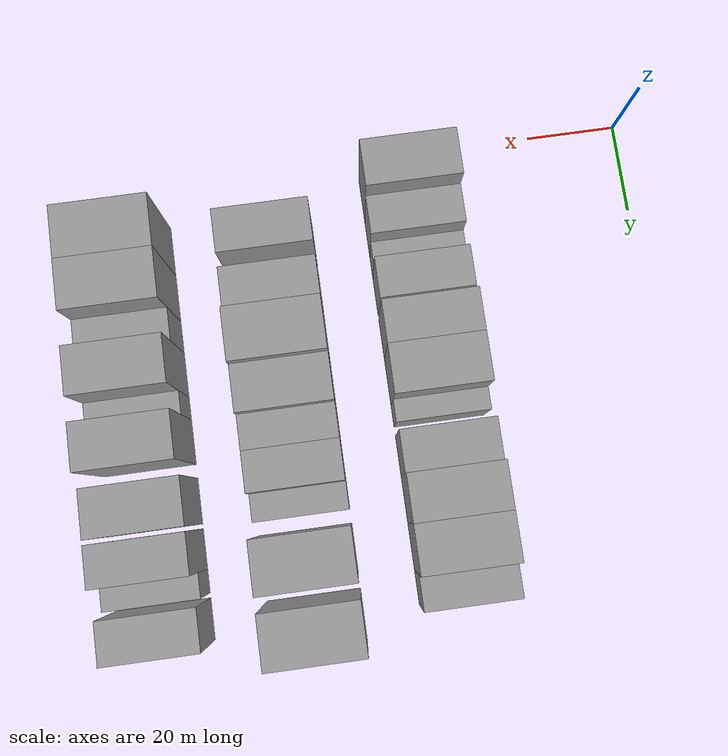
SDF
<sdf version="1.6">
 <world name="default">
  <model name="building_41">
   <static>1</static>
   <pose>50.0000 9.9860 0 0.000000 0.000000 0.000000</pose>
   <link name="link">
    <pose>0 0 12.00 0 0 0</pose>
    <collision name="collision"><geometry><box><size>20.0000 9.8801 24.0000</size></box></geometry></collision>
    <visual name="visual">
     <cast_shadows>0</cast_shadows>
     <geometry><box><size>20.0000 9.8801 24.0000</size></box></geometry>
     <material>
      <script>
       <uri>model://grey_wall/materials/scripts</uri>
       <uri>model://grey_wall/materials/textures</uri>
       <name>vrc/grey_wall</name>
      </script>
     </material>
    </visual>
   </link>
  </model>
  <model name="building_42">
   <static>1</static>
   <pose>50.0000 19.0337 0 0.000000 0.000000 0.000000</pose>
   <link name="link">
    <pose>0 0 9.00 0 0 0</pose>
    <collision name="collision"><geometry><box><size>20.0000 8.2153 18.0000</size></box></geometry></collision>
    <visual name="visual">
     <cast_shadows>0</cast_shadows>
     <geometry><box><size>20.0000 8.2153 18.0000</size></box></geometry>
     <material>
      <script>
       <uri>model://grey_wall/materials/scripts</uri>
       <uri>model://grey_wall/materials/textures</uri>
       <name>vrc/grey_wall</name>
      </script>
     </material>
    </visual>
   </link>
  </model>
  <model name="building_43">
   <static>1</static>
   <pose>50.0000 25.6205 0 0.000000 0.000000 0.000000</pose>
   <link name="link">
    <pose>0 0 6.00 0 0 0</pose>
    <collision name="collision"><geometry><box><size>20.0000 4.9583 12.0000</size></box></geometry></collision>
    <visual name="visual">
     <cast_shadows>0</cast_shadows>
     <geometry><box><size>20.0000 4.9583 12.0000</size></box></geometry>
     <material>
      <script>
       <uri>model://grey_wall/materials/scripts</uri>
       <uri>model://grey_wall/materials/textures</uri>
       <name>vrc/grey_wall</name>
      </script>
     </material>
    </visual>
   </link>
  </model>
  <model name="building_44">
   <static>1</static>
   <pose>50.0000 32.4758 0 0.000000 0.000000 0.000000</pose>
   <link name="link">
    <pose>0 0 9.00 0 0 0</pose>
    <collision name="collision"><geometry><box><size>20.0000 8.7523 18.0000</size></box></geometry></collision>
    <visual name="visual">
     <cast_shadows>0</cast_shadows>
     <geometry><box><size>20.0000 8.7523 18.0000</size></box></geometry>
     <material>
      <script>
       <uri>model://grey_wall/materials/scripts</uri>
       <uri>model://grey_wall/materials/textures</uri>
       <name>vrc/grey_wall</name>
      </script>
     </material>
    </visual>
   </link>
  </model>
  <model name="building_45">
   <static>1</static>
   <pose>50.0000 42.3692 0 0.000000 0.000000 0.000000</pose>
   <link name="link">
    <pose>0 0 10.50 0 0 0</pose>
    <collision name="collision"><geometry><box><size>20.0000 9.0345 21.0000</size></box></geometry></collision>
    <visual name="visual">
     <cast_shadows>0</cast_shadows>
     <geometry><box><size>20.0000 9.0345 21.0000</size></box></geometry>
     <material>
      <script>
       <uri>model://grey_wall/materials/scripts</uri>
       <uri>model://grey_wall/materials/textures</uri>
       <name>vrc/grey_wall</name>
      </script>
     </material>
    </visual>
   </link>
  </model>
  <model name="building_46">
   <static>1</static>
   <pose>50.0000 52.0392 0 0.000000 0.000000 0.000000</pose>
   <link name="link">
    <pose>0 0 10.50 0 0 0</pose>
    <collision name="collision"><geometry><box><size>20.0000 10.3055 21.0000</size></box></geometry></collision>
    <visual name="visual">
     <cast_shadows>0</cast_shadows>
     <geometry><box><size>20.0000 10.3055 21.0000</size></box></geometry>
     <material>
      <script>
       <uri>model://grey_wall/materials/scripts</uri>
       <uri>model://grey_wall/materials/textures</uri>
       <name>vrc/grey_wall</name>
      </script>
     </material>
    </visual>
   </link>
  </model>
  <model name="building_47">
   <static>1</static>
   <pose>50.0000 59.6052 0 0.000000 0.000000 0.000000</pose>
   <link name="link">
    <pose>0 0 6.00 0 0 0</pose>
    <collision name="collision"><geometry><box><size>20.0000 4.8266 12.0000</size></box></geometry></collision>
    <visual name="visual">
     <cast_shadows>0</cast_shadows>
     <geometry><box><size>20.0000 4.8266 12.0000</size></box></geometry>
     <material>
      <script>
       <uri>model://grey_wall/materials/scripts</uri>
       <uri>model://grey_wall/materials/textures</uri>
       <name>vrc/grey_wall</name>
      </script>
     </material>
    </visual>
   </link>
  </model>
  <model name="building_48">
   <static>1</static>
   <pose>50.0000 68.4379 0 0.000000 0.000000 0.000000</pose>
   <link name="link">
    <pose>0 0 9.00 0 0 0</pose>
    <collision name="collision"><geometry><box><size>20.0000 8.8388 18.0000</size></box></geometry></collision>
    <visual name="visual">
     <cast_shadows>0</cast_shadows>
     <geometry><box><size>20.0000 8.8388 18.0000</size></box></geometry>
     <material>
      <script>
       <uri>model://grey_wall/materials/scripts</uri>
       <uri>model://grey_wall/materials/textures</uri>
       <name>vrc/grey_wall</name>
      </script>
     </material>
    </visual>
   </link>
  </model>
  <model name="building_49">
   <static>1</static>
   <pose>50.0000 77.8143 0 0.000000 0.000000 0.000000</pose>
   <link name="link">
    <pose>0 0 10.50 0 0 0</pose>
    <collision name="collision"><geometry><box><size>20.0000 9.9141 21.0000</size></box></geometry></collision>
    <visual name="visual">
     <cast_shadows>0</cast_shadows>
     <geometry><box><size>20.0000 9.9141 21.0000</size></box></geometry>
     <material>
      <script>
       <uri>model://grey_wall/materials/scripts</uri>
       <uri>model://grey_wall/materials/textures</uri>
       <name>vrc/grey_wall</name>
      </script>
     </material>
    </visual>
   </link>
  </model>
  <model name="building_50">
   <static>1</static>
   <pose>50.0000 87.8708 0 0.000000 0.000000 0.000000</pose>
   <link name="link">
    <pose>0 0 10.50 0 0 0</pose>
    <collision name="collision"><geometry><box><size>20.0000 10.1988 21.0000</size></box></geometry></collision>
    <visual name="visual">
     <cast_shadows>0</cast_shadows>
     <geometry><box><size>20.0000 10.1988 21.0000</size></box></geometry>
     <material>
      <script>
       <uri>model://grey_wall/materials/scripts</uri>
       <uri>model://grey_wall/materials/textures</uri>
       <name>vrc/grey_wall</name>
      </script>
     </material>
    </visual>
   </link>
  </model>
  <model name="building_51">
   <static>1</static>
   <pose>50.0000 96.6407 0 0.000000 0.000000 0.000000</pose>
   <link name="link">
    <pose>0 0 7.50 0 0 0</pose>
    <collision name="collision"><geometry><box><size>20.0000 7.3410 15.0000</size></box></geometry></collision>
    <visual name="visual">
     <cast_shadows>0</cast_shadows>
     <geometry><box><size>20.0000 7.3410 15.0000</size></box></geometry>
     <material>
      <script>
       <uri>model://grey_wall/materials/scripts</uri>
       <uri>model://grey_wall/materials/textures</uri>
       <name>vrc/grey_wall</name>
      </script>
     </material>
    </visual>
   </link>
  </model>
  <model name="building_119">
   <static>1</static>
   <pose>82.0000 19.0891 0 0.000000 0.000000 0.000000</pose>
   <link name="link">
    <pose>0 0 10.50 0 0 0</pose>
    <collision name="collision"><geometry><box><size>20.0000 9.3043 21.0000</size></box></geometry></collision>
    <visual name="visual">
     <cast_shadows>0</cast_shadows>
     <geometry><box><size>20.0000 9.3043 21.0000</size></box></geometry>
     <material>
      <script>
       <uri>model://grey_wall/materials/scripts</uri>
       <uri>model://grey_wall/materials/textures</uri>
       <name>vrc/grey_wall</name>
      </script>
     </material>
    </visual>
   </link>
  </model>
  <model name="building_120">
   <static>1</static>
   <pose>82.0000 31.2107 0 0.000000 0.000000 0.000000</pose>
   <link name="link">
    <pose>0 0 10.50 0 0 0</pose>
    <collision name="collision"><geometry><box><size>20.0000 8.9389 21.0000</size></box></geometry></collision>
    <visual name="visual">
     <cast_shadows>0</cast_shadows>
     <geometry><box><size>20.0000 8.9389 21.0000</size></box></geometry>
     <material>
      <script>
       <uri>model://grey_wall/materials/scripts</uri>
       <uri>model://grey_wall/materials/textures</uri>
       <name>vrc/grey_wall</name>
      </script>
     </material>
    </visual>
   </link>
  </model>
  <model name="building_121">
   <static>1</static>
   <pose>82.0000 41.2466 0 0.000000 0.000000 0.000000</pose>
   <link name="link">
    <pose>0 0 12.00 0 0 0</pose>
    <collision name="collision"><geometry><box><size>20.0000 11.1328 24.0000</size></box></geometry></collision>
    <visual name="visual">
     <cast_shadows>0</cast_shadows>
     <geometry><box><size>20.0000 11.1328 24.0000</size></box></geometry>
     <material>
      <script>
       <uri>model://grey_wall/materials/scripts</uri>
       <uri>model://grey_wall/materials/textures</uri>
       <name>vrc/grey_wall</name>
      </script>
     </material>
    </visual>
   </link>
  </model>
  <model name="building_122">
   <static>1</static>
   <pose>82.0000 51.7374 0 0.000000 0.000000 0.000000</pose>
   <link name="link">
    <pose>0 0 10.50 0 0 0</pose>
    <collision name="collision"><geometry><box><size>20.0000 9.8489 21.0000</size></box></geometry></collision>
    <visual name="visual">
     <cast_shadows>0</cast_shadows>
     <geometry><box><size>20.0000 9.8489 21.0000</size></box></geometry>
     <material>
      <script>
       <uri>model://grey_wall/materials/scripts</uri>
       <uri>model://grey_wall/materials/textures</uri>
       <name>vrc/grey_wall</name>
      </script>
     </material>
    </visual>
   </link>
  </model>
  <model name="building_123">
   <static>1</static>
   <pose>82.0000 60.3269 0 0.000000 0.000000 0.000000</pose>
   <link name="link">
    <pose>0 0 9.00 0 0 0</pose>
    <collision name="collision"><geometry><box><size>20.0000 7.3301 18.0000</size></box></geometry></collision>
    <visual name="visual">
     <cast_shadows>0</cast_shadows>
     <geometry><box><size>20.0000 7.3301 18.0000</size></box></geometry>
     <material>
      <script>
       <uri>model://grey_wall/materials/scripts</uri>
       <uri>model://grey_wall/materials/textures</uri>
       <name>vrc/grey_wall</name>
      </script>
     </material>
    </visual>
   </link>
  </model>
  <model name="building_124">
   <static>1</static>
   <pose>82.0000 68.2621 0 0.000000 0.000000 0.000000</pose>
   <link name="link">
    <pose>0 0 9.00 0 0 0</pose>
    <collision name="collision"><geometry><box><size>20.0000 8.5404 18.0000</size></box></geometry></collision>
    <visual name="visual">
     <cast_shadows>0</cast_shadows>
     <geometry><box><size>20.0000 8.5404 18.0000</size></box></geometry>
     <material>
      <script>
       <uri>model://grey_wall/materials/scripts</uri>
       <uri>model://grey_wall/materials/textures</uri>
       <name>vrc/grey_wall</name>
      </script>
     </material>
    </visual>
   </link>
  </model>
  <model name="building_125">
   <static>1</static>
   <pose>82.0000 75.4451 0 0.000000 0.000000 0.000000</pose>
   <link name="link">
    <pose>0 0 6.00 0 0 0</pose>
    <collision name="collision"><geometry><box><size>20.0000 5.8255 12.0000</size></box></geometry></collision>
    <visual name="visual">
     <cast_shadows>0</cast_shadows>
     <geometry><box><size>20.0000 5.8255 12.0000</size></box></geometry>
     <material>
      <script>
       <uri>model://grey_wall/materials/scripts</uri>
       <uri>model://grey_wall/materials/textures</uri>
       <name>vrc/grey_wall</name>
      </script>
     </material>
    </visual>
   </link>
  </model>
  <model name="building_126">
   <static>1</static>
   <pose>82.0000 86.7771 0 0.000000 0.000000 0.000000</pose>
   <link name="link">
    <pose>0 0 12.00 0 0 0</pose>
    <collision name="collision"><geometry><box><size>20.0000 10.8386 24.0000</size></box></geometry></collision>
    <visual name="visual">
     <cast_shadows>0</cast_shadows>
     <geometry><box><size>20.0000 10.8386 24.0000</size></box></geometry>
     <material>
      <script>
       <uri>model://grey_wall/materials/scripts</uri>
       <uri>model://grey_wall/materials/textures</uri>
       <name>vrc/grey_wall</name>
      </script>
     </material>
    </visual>
   </link>
  </model>
  <model name="building_127">
   <static>1</static>
   <pose>82.0000 100.6241 0 0.000000 0.000000 0.000000</pose>
   <link name="link">
    <pose>0 0 12.00 0 0 0</pose>
    <collision name="collision"><geometry><box><size>20.0000 10.8555 24.0000</size></box></geometry></collision>
    <visual name="visual">
     <cast_shadows>0</cast_shadows>
     <geometry><box><size>20.0000 10.8555 24.0000</size></box></geometry>
     <material>
      <script>
       <uri>model://grey_wall/materials/scripts</uri>
       <uri>model://grey_wall/materials/textures</uri>
       <name>vrc/grey_wall</name>
      </script>
     </material>
    </visual>
   </link>
  </model>
  <model name="building_203">
   <static>1</static>
   <pose>114.0000 15.8854 0 0.000000 0.000000 0.000000</pose>
   <link name="link">
    <pose>0 0 12.00 0 0 0</pose>
    <collision name="collision"><geometry><box><size>20.0000 11.1500 24.0000</size></box></geometry></collision>
    <visual name="visual">
     <cast_shadows>0</cast_shadows>
     <geometry><box><size>20.0000 11.1500 24.0000</size></box></geometry>
     <material>
      <script>
       <uri>model://grey_wall/materials/scripts</uri>
       <uri>model://grey_wall/materials/textures</uri>
       <name>vrc/grey_wall</name>
      </script>
     </material>
    </visual>
   </link>
  </model>
  <model name="building_204">
   <static>1</static>
   <pose>114.0000 26.7930 0 0.000000 0.000000 0.000000</pose>
   <link name="link">
    <pose>0 0 12.00 0 0 0</pose>
    <collision name="collision"><geometry><box><size>20.0000 10.6653 24.0000</size></box></geometry></collision>
    <visual name="visual">
     <cast_shadows>0</cast_shadows>
     <geometry><box><size>20.0000 10.6653 24.0000</size></box></geometry>
     <material>
      <script>
       <uri>model://grey_wall/materials/scripts</uri>
       <uri>model://grey_wall/materials/textures</uri>
       <name>vrc/grey_wall</name>
      </script>
     </material>
    </visual>
   </link>
  </model>
  <model name="building_205">
   <static>1</static>
   <pose>114.0000 35.6907 0 0.000000 0.000000 0.000000</pose>
   <link name="link">
    <pose>0 0 7.50 0 0 0</pose>
    <collision name="collision"><geometry><box><size>20.0000 7.1301 15.0000</size></box></geometry></collision>
    <visual name="visual">
     <cast_shadows>0</cast_shadows>
     <geometry><box><size>20.0000 7.1301 15.0000</size></box></geometry>
     <material>
      <script>
       <uri>model://grey_wall/materials/scripts</uri>
       <uri>model://grey_wall/materials/textures</uri>
       <name>vrc/grey_wall</name>
      </script>
     </material>
    </visual>
   </link>
  </model>
  <model name="building_206">
   <static>1</static>
   <pose>114.0000 44.2863 0 0.000000 0.000000 0.000000</pose>
   <link name="link">
    <pose>0 0 12.00 0 0 0</pose>
    <collision name="collision"><geometry><box><size>20.0000 10.0611 24.0000</size></box></geometry></collision>
    <visual name="visual">
     <cast_shadows>0</cast_shadows>
     <geometry><box><size>20.0000 10.0611 24.0000</size></box></geometry>
     <material>
      <script>
       <uri>model://grey_wall/materials/scripts</uri>
       <uri>model://grey_wall/materials/textures</uri>
       <name>vrc/grey_wall</name>
      </script>
     </material>
    </visual>
   </link>
  </model>
  <model name="building_207">
   <static>1</static>
   <pose>114.0000 51.8592 0 0.000000 0.000000 0.000000</pose>
   <link name="link">
    <pose>0 0 6.00 0 0 0</pose>
    <collision name="collision"><geometry><box><size>20.0000 5.0847 12.0000</size></box></geometry></collision>
    <visual name="visual">
     <cast_shadows>0</cast_shadows>
     <geometry><box><size>20.0000 5.0847 12.0000</size></box></geometry>
     <material>
      <script>
       <uri>model://grey_wall/materials/scripts</uri>
       <uri>model://grey_wall/materials/textures</uri>
       <name>vrc/grey_wall</name>
      </script>
     </material>
    </visual>
   </link>
  </model>
  <model name="building_208">
   <static>1</static>
   <pose>114.0000 59.3313 0 0.000000 0.000000 0.000000</pose>
   <link name="link">
    <pose>0 0 12.00 0 0 0</pose>
    <collision name="collision"><geometry><box><size>20.0000 9.8594 24.0000</size></box></geometry></collision>
    <visual name="visual">
     <cast_shadows>0</cast_shadows>
     <geometry><box><size>20.0000 9.8594 24.0000</size></box></geometry>
     <material>
      <script>
       <uri>model://grey_wall/materials/scripts</uri>
       <uri>model://grey_wall/materials/textures</uri>
       <name>vrc/grey_wall</name>
      </script>
     </material>
    </visual>
   </link>
  </model>
  <model name="building_209">
   <static>1</static>
   <pose>114.0000 72.2416 0 0.000000 0.000000 0.000000</pose>
   <link name="link">
    <pose>0 0 10.50 0 0 0</pose>
    <collision name="collision"><geometry><box><size>20.0000 9.9612 21.0000</size></box></geometry></collision>
    <visual name="visual">
     <cast_shadows>0</cast_shadows>
     <geometry><box><size>20.0000 9.9612 21.0000</size></box></geometry>
     <material>
      <script>
       <uri>model://grey_wall/materials/scripts</uri>
       <uri>model://grey_wall/materials/textures</uri>
       <name>vrc/grey_wall</name>
      </script>
     </material>
    </visual>
   </link>
  </model>
  <model name="building_210">
   <static>1</static>
   <pose>114.0000 82.4915 0 0.000000 0.000000 0.000000</pose>
   <link name="link">
    <pose>0 0 10.50 0 0 0</pose>
    <collision name="collision"><geometry><box><size>20.0000 8.5386 21.0000</size></box></geometry></collision>
    <visual name="visual">
     <cast_shadows>0</cast_shadows>
     <geometry><box><size>20.0000 8.5386 21.0000</size></box></geometry>
     <material>
      <script>
       <uri>model://grey_wall/materials/scripts</uri>
       <uri>model://grey_wall/materials/textures</uri>
       <name>vrc/grey_wall</name>
      </script>
     </material>
    </visual>
   </link>
  </model>
  <model name="building_211">
   <static>1</static>
   <pose>114.0000 89.3369 0 0.000000 0.000000 0.000000</pose>
   <link name="link">
    <pose>0 0 6.00 0 0 0</pose>
    <collision name="collision"><geometry><box><size>20.0000 5.1522 12.0000</size></box></geometry></collision>
    <visual name="visual">
     <cast_shadows>0</cast_shadows>
     <geometry><box><size>20.0000 5.1522 12.0000</size></box></geometry>
     <material>
      <script>
       <uri>model://grey_wall/materials/scripts</uri>
       <uri>model://grey_wall/materials/textures</uri>
       <name>vrc/grey_wall</name>
      </script>
     </material>
    </visual>
   </link>
  </model>
  <model name="building_212">
   <static>1</static>
   <pose>114.0000 97.3094 0 0.000000 0.000000 0.000000</pose>
   <link name="link">
    <pose>0 0 9.00 0 0 0</pose>
    <collision name="collision"><geometry><box><size>20.0000 8.7929 18.0000</size></box></geometry></collision>
    <visual name="visual">
     <cast_shadows>0</cast_shadows>
     <geometry><box><size>20.0000 8.7929 18.0000</size></box></geometry>
     <material>
      <script>
       <uri>model://grey_wall/materials/scripts</uri>
       <uri>model://grey_wall/materials/textures</uri>
       <name>vrc/grey_wall</name>
      </script>
     </material>
    </visual>
   </link>
  </model>
 </world>
</sdf>
